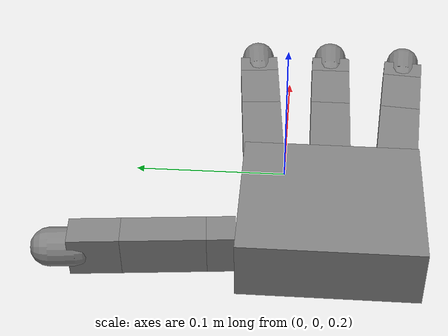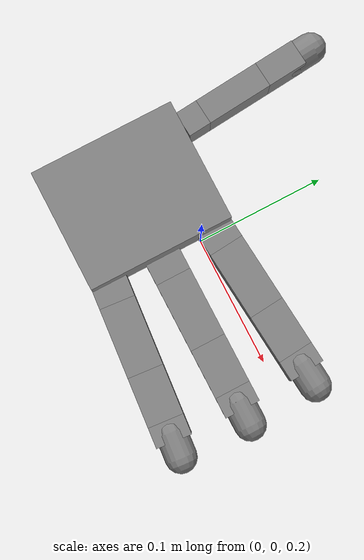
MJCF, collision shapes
<mujoco model="allegro_right">
  <compiler angle="radian" meshdir="assets" autolimits="true"/>
<option gravity="0 0 -0.981"/>
  <option cone="elliptic" impratio="10"/>

  <default>
    <default class="allegro_right">
      <joint axis="0 1 0" damping=".1"/>
      <position kp="1"/>
      <geom density="800"/>

      <default class="visual">
        <geom type="mesh" contype="0" conaffinity="0" group="2" material="black"/>
        <default class="palm_visual">
          <geom  mesh="base_link"/>
        </default>
        <default class="base_visual">
          <geom mesh="link_0.0"/>
        </default>
        <default class="proximal_visual">
          <geom  mesh="link_1.0"/>
        </default>
        <default class="medial_visual">
          <geom mesh="link_2.0"/>
        </default>
        <default class="distal_visual">
          <geom  mesh="link_3.0"/>
        </default>
        <default class="fingertip_visual">
          <geom  pos="0 0 0.0267" material="white" mesh="link_3.0_tip"/>
        </default>
        <default class="thumbtip_visual">
          <geom  pos="0 0 0.0423" material="white" mesh="link_15.0_tip"/>
        </default>
      </default>

      <default class="collision">
        <geom group="3" type="box" mass="0"/>
        <default class="palm_collision">
          <geom  size="0.0204 0.0565 0.0475" pos="-0.0093 0 -0.0475"/>
        </default>
        <default class="base_collision">
          <geom size="0.0098 0.01375 0.0082" pos="0 0 0.0082"/>
          <default class="thumb_base_collision">
            <geom size="0.0179 0.017 0.02275" pos="-0.0179 0.009 0.0145"/>
          </default>
        </default>
        <default class="proximal_collision">
          <geom size="0.0098 0.01375 0.027" pos="0 0 0.027"/>
          <default class="thumb_proximal_collision">
            <geom size="0.0098 0.01375 0.00885" pos="0 0 0.00885"/>
          </default>
        </default>
        <default class="medial_collision">
          <geom size="0.0098 0.01375 0.0192" pos="0 0 0.0192"/>
          <default class="thumb_medial_collision">
            <geom size="0.0098 0.01375 0.0257" pos="0 0 0.0257"/>
          </default>
        </default>
        <default class="distal_collision">
          <geom size="0.0098 0.01375 0.008" pos="0 0 0.008"/>
          <default class="thumb_distal_collision">
            <geom size="0.0098 0.01375 0.0157" pos="0 0 0.0157"/>
          </default>
        </default>
        <default class="fingertip_collision">
          <geom type="capsule" size="0.012 0.01" pos="0 0 0.019"/>
          <default class="thumbtip_collision">
            <geom type="capsule" size="0.012 0.008" pos="0 0 0.035"/>
          </default>
        </default>
      </default>

      <default class="base">
        <joint axis="0 0 1" range="-0.47 0.47"/>
        <position ctrlrange="-0.47 0.47"/>
      </default>
      <default class="proximal">
        <joint range="-0.196 1.61"/>
        <position ctrlrange="-0.196 1.61"/>
      </default>
      <default class="medial">
        <joint range="-0.174 1.709"/>
        <position ctrlrange="-0.174 1.709"/>
      </default>
      <default class="distal">
        <joint range="-0.227 1.618"/>
        <position ctrlrange="-0.227 1.618"/>
      </default>
      <default class="thumb_base">
        <joint axis="-1 0 0" range="0.263 1.396"/>
        <position ctrlrange="0.263 1.396"/>
      </default>
      <default class="thumb_proximal">
        <joint axis="0 0 1" range="-0.105 1.163"/>
        <position ctrlrange="-0.105 1.163"/>
      </default>
      <default class="thumb_medial">
        <joint range="-0.189 1.644"/>
        <position ctrlrange="-0.189 1.644"/>
      </default>
      <default class="thumb_distal">
        <joint range="-0.162 1.719"/>
        <position ctrlrange="-0.162 1.719"/>
      </default>
    </default>
  </default>

  <asset>
    <material name="black" rgba="0.2 0.2 0.2 1"/>
    <material name="white" rgba="0.9 0.9 0.9 1"/>

    <mesh file="base_link.stl"/>
    <mesh file="link_0.0.stl"/>
    <mesh file="link_1.0.stl"/>
    <mesh file="link_2.0.stl"/>
    <mesh file="link_3.0.stl"/>
    <mesh file="link_3.0_tip.stl"/>
    <mesh file="link_12.0_right.stl"/>
    <mesh file="link_13.0.stl"/>
    <mesh file="link_14.0.stl"/>
    <mesh file="link_15.0.stl"/>
    <mesh file="link_15.0_tip.stl"/>
  </asset>

  <worldbody>

      <body name="hand_root" pos="-0.05 -0.03 0.2" quat="1 0 1 0">
         <inertial mass="0.01" diaginertia="0.001 0.001 0.001" pos = "0 0 0"/>
          <freejoint/>
          <body name="forearm"  pos="0 0 0" quat="1 0 0 0">S

          <geom type="sphere" size="0.01" rgba="0 0 0 0"/>
       <!-- Supination joint: rotates around Z-axis -->
          <joint name="supination" type="hinge" axis="1 0 0" range="-0.47 0.47"/>
            <joint name="wrist_flexion" type="hinge" axis="0 1 0" range="-0.7 0.7"/>

          <body name="palm" quat="1 0 0 0" pos="0 0 0.0475" childclass="allegro_right">
          <geom class="palm_visual" mesh="base_link"/>
          <geom name="palm" class="palm_collision"/>

          <!-- First finger -->
          <body name="ff_base" pos="0 0.0435 -0.001542" quat="0.999048 -0.0436194 0 0">
            <joint name="ffj0" class="base"/>
            <geom class="base_visual"/>
            <geom name="ff_base" class="base_collision"/>
            <body name="ff_proximal" pos="0 0 0.0164">
              <joint name="ffj1" class="proximal"/>
              <geom class="proximal_visual"/>
              <geom name="ff_proximal" class="proximal_collision"/>
              <body name="ff_medial" pos="0 0 0.054">
                <joint name="ffj2" class="medial"/>
                <geom class="medial_visual"/>
                <geom name="ff_medial" class="medial_collision"/>
                <body name="ff_distal" pos="0 0 0.0384">
                  <joint name="ffj3" class="distal"/>
                  <geom class="distal_visual"/>
                  <geom name="ff_distal" class="distal_collision"/>
                  <body name="ff_tip">
                    <geom class="fingertip_visual"/>
                    <geom name="ff_tip" class="fingertip_collision"/>
                  </body>
                </body>
              </body>
            </body>
          </body>
          <!-- Middle finger -->
          <body name="mf_base" pos="0 0 0.0007">
            <joint name="mfj0" class="base"/>
            <geom class="base_visual"/>
            <geom name="mf_base" class="base_collision"/>
            <body name="mf_proximal" pos="0 0 0.0164">
              <joint name="mfj1" class="proximal"/>
              <geom name="mf_proximal" class="proximal_visual"/>
              <geom class="proximal_collision"/>
              <body name="mf_medial" pos="0 0 0.054">
                <joint name="mfj2" class="medial"/>
                <geom class="medial_visual"/>
                <geom name = "mf_medial" class="medial_collision"/>
                <body name="mf_distal" pos="0 0 0.0384">
                  <joint name="mfj3" class="distal"/>
                  <geom class="distal_visual"/>
                  <geom name="mf_distal" class="distal_collision"/>
                  <body name="mf_tip">
                    <geom class="fingertip_visual"/>
                    <geom name="mf_tip" class="fingertip_collision"/>
                      <camera name="cam_mf_tip" mode="trackcom" pos="0 0 0.01" xyaxes="0 0 1 0 1 0"/>
                  </body>
                </body>
              </body>
            </body>
          </body>
          <!-- Ring finger -->
          <body name="rf_base" pos="0 -0.0435 -0.001542" quat="0.999048 0.0436194 0 0">
            <joint name="rfj0" class="base"/>
            <geom class="base_visual"/>
            <geom name="rf_base" class="base_collision"/>
            <body name="rf_proximal" pos="0 0 0.0164">
              <joint name="rfj1" class="proximal"/>
              <geom class="proximal_visual"/>
              <geom name="rf_proximal" class="proximal_collision"/>
              <body name="rf_medial" pos="0 0 0.054">
                <joint name="rfj2" class="medial"/>
                <geom class="medial_visual"/>
                <geom name="rf_medial" class="medial_collision"/>
                <body name="rf_distal" pos="0 0 0.0384">
                  <joint name="rfj3" class="distal"/>
                  <geom class="distal_visual"/>
                  <geom name="rf_distal" class="distal_collision"/>
                  <body name="rf_tip">
                    <geom class="fingertip_visual"/>
                    <geom name="rf_tip" class="fingertip_collision"/>
                  </body>
                </body>
              </body>
            </body>
          </body>
          <!-- Thumb -->
          <body name="th_base" pos="-0.0182 0.019333 -0.045987" quat="0.477714 -0.521334 -0.521334 -0.477714">
            <joint name="thj0" class="thumb_base"/>
            <geom class="visual" mesh="link_12.0_right"/>
            <geom name="th_base" class="thumb_base_collision"/>
            <body name="th_proximal" pos="-0.027 0.005 0.0399">
              <joint name="thj1" class="thumb_proximal"/>
              <geom class="visual" mesh="link_13.0"/>
              <geom name="th_proximal" class="thumb_proximal_collision"/>
              <body name="th_medial" pos="0 0 0.0177">
                <joint name="thj2" class="thumb_medial"/>
                <geom class="visual" mesh="link_14.0"/>
                <geom name="th_medial" class="thumb_medial_collision"/>
                <body name="th_distal" pos="0 0 0.0514">
                  <joint name="thj3" class="thumb_distal"/>
                  <geom class="visual" mesh="link_15.0"/>
                  <geom name="th_distal" class="thumb_distal_collision"/>
                  <body name="th_tip">
                    <geom class="thumbtip_visual"/>
                    <geom name="th_tip" class="thumbtip_collision"/>
                      <camera name="cam_th_tip" mode="trackcom" pos="0 0 0.1" xyaxes="0 0 1 0 1 0"/>
                  </body>
                </body>
              </body>
            </body>
          </body>
      </body>
  </body>
        </body>
  </worldbody>

  <contact>
    <exclude body1="palm" body2="ff_base"/>
    <exclude body1="palm" body2="mf_base"/>
    <exclude body1="palm" body2="rf_base"/>
    <exclude body1="palm" body2="th_base"/>
    <exclude body1="palm" body2="th_proximal"/>
  </contact>

  <actuator>
    <position name="ffa0" joint="ffj0" class="base"/>
    <position name="ffa1" joint="ffj1" class="proximal"/>
    <position name="ffa2" joint="ffj2" class="medial"/>
    <position name="ffa3" joint="ffj3" class="distal"/>
    <position name="mfa0" joint="mfj0" class="base"/>
    <position name="mfa1" joint="mfj1" class="proximal"/>
    <position name="mfa2" joint="mfj2" class="medial"/>
    <position name="mfa3" joint="mfj3" class="distal"/>
    <position name="rfa0" joint="rfj0" class="base"/>
    <position name="rfa1" joint="rfj1" class="proximal"/>
    <position name="rfa2" joint="rfj2" class="medial"/>
    <position name="rfa3" joint="rfj3" class="distal"/>
    <position name="tha0" joint="thj0" class="thumb_base"/>
    <position name="tha1" joint="thj1" class="thumb_proximal"/>
    <position name="tha2" joint="thj2" class="thumb_medial"/>
    <position name="tha3" joint="thj3" class="thumb_distal"/>
    <position name="supination_act" joint="supination" kp="10"/>
    <position name="wrist_flexion_act" joint="wrist_flexion" kp="10"/>

  </actuator>
</mujoco>
